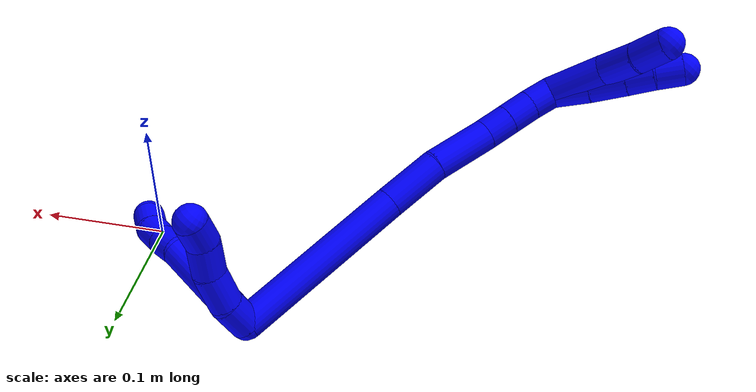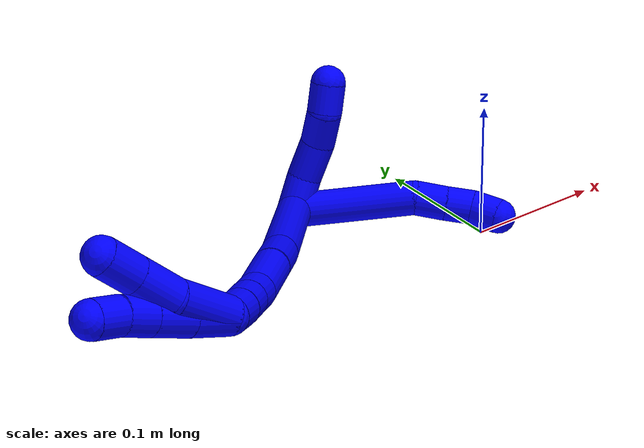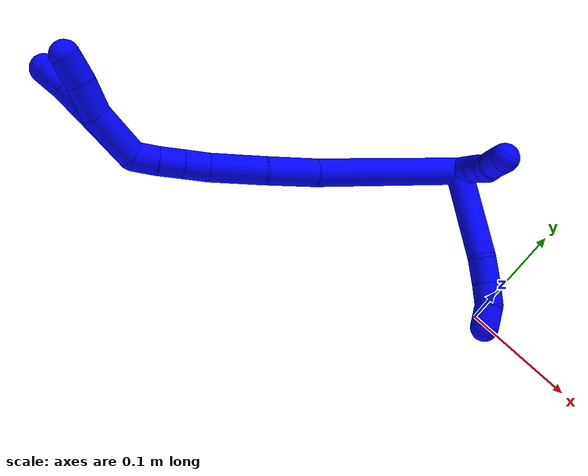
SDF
<sdf version="1.7">
 <world name="default">
  <model name="1">
   <static>0</static>
   <link name="1">
    <collision name="collision-cylinder-e_1_2_8">
     <pose>0.039429 -0.018064 -0.004624 1.82137 1.12906 1.36858</pose>
     <geometry><cylinder><radius>0.0125</radius><length>0.087232</length></cylinder></geometry>
     <surface>
      <friction><ode><mu>1.16</mu><mu2>1.16</mu2><slip1>0</slip1><slip2>0</slip2></ode></friction>
      <contact><ode><kp>1e+06</kp><kd>1</kd><max_vel>0</max_vel><min_depth>0.001</min_depth></ode></contact>
     </surface>
    </collision>
    <visual name="visual-cylinder-e_1_2_8">
     <pose>0.039429 -0.018064 -0.004624 1.82137 1.12906 1.36858</pose>
     <geometry><cylinder><radius>0.0125</radius><length>0.087232</length></cylinder></geometry>
     <material><ambient>0 0 1 1</ambient></material>
    </visual>
    <collision name="collision-cylinder-e_2_8_9">
     <pose>0.087233 -0.042908 -0.012698 2.04164 0.833307 1.25052</pose>
     <geometry><cylinder><radius>0.0125</radius><length>0.022628</length></cylinder></geometry>
     <surface>
      <friction><ode><mu>1.16</mu><mu2>1.16</mu2><slip1>0</slip1><slip2>0</slip2></ode></friction>
      <contact><ode><kp>1e+06</kp><kd>1</kd><max_vel>0</max_vel><min_depth>0.001</min_depth></ode></contact>
     </surface>
    </collision>
    <visual name="visual-cylinder-e_2_8_9">
     <pose>0.087233 -0.042908 -0.012698 2.04164 0.833307 1.25052</pose>
     <geometry><cylinder><radius>0.0125</radius><length>0.022628</length></cylinder></geometry>
     <material><ambient>0 0 1 1</ambient></material>
    </visual>
    <collision name="collision-cylinder-e_3_9_10">
     <pose>0.103307 -0.0557 -0.018335 1.91939 0.87759 1.18049</pose>
     <geometry><cylinder><radius>0.0125</radius><length>0.020021</length></cylinder></geometry>
     <surface>
      <friction><ode><mu>1.16</mu><mu2>1.16</mu2><slip1>0</slip1><slip2>0</slip2></ode></friction>
      <contact><ode><kp>1e+06</kp><kd>1</kd><max_vel>0</max_vel><min_depth>0.001</min_depth></ode></contact>
     </surface>
    </collision>
    <visual name="visual-cylinder-e_3_9_10">
     <pose>0.103307 -0.0557 -0.018335 1.91939 0.87759 1.18049</pose>
     <geometry><cylinder><radius>0.0125</radius><length>0.020021</length></cylinder></geometry>
     <material><ambient>0 0 1 1</ambient></material>
    </visual>
    <collision name="collision-cylinder-e_4_10_6">
     <pose>0.117269 -0.069582 -0.020314 1.5447 0.67191 0.65583</pose>
     <geometry><cylinder><radius>0.0125</radius><length>0.020119</length></cylinder></geometry>
     <surface>
      <friction><ode><mu>1.16</mu><mu2>1.16</mu2><slip1>0</slip1><slip2>0</slip2></ode></friction>
      <contact><ode><kp>1e+06</kp><kd>1</kd><max_vel>0</max_vel><min_depth>0.001</min_depth></ode></contact>
     </surface>
    </collision>
    <visual name="visual-cylinder-e_4_10_6">
     <pose>0.117269 -0.069582 -0.020314 1.5447 0.67191 0.65583</pose>
     <geometry><cylinder><radius>0.0125</radius><length>0.020119</length></cylinder></geometry>
     <material><ambient>0 0 1 1</ambient></material>
    </visual>
    <collision name="collision-cylinder-e_1_2_11">
     <pose>0.009411 0.00786 0.003095 -1.19567 0.839293 -0.589899</pose>
     <geometry><cylinder><radius>0.0125</radius><length>0.025292</length></cylinder></geometry>
     <surface>
      <friction><ode><mu>1.16</mu><mu2>1.16</mu2><slip1>0</slip1><slip2>0</slip2></ode></friction>
      <contact><ode><kp>1e+06</kp><kd>1</kd><max_vel>0</max_vel><min_depth>0.001</min_depth></ode></contact>
     </surface>
    </collision>
    <visual name="visual-cylinder-e_1_2_11">
     <pose>0.009411 0.00786 0.003095 -1.19567 0.839293 -0.589899</pose>
     <geometry><cylinder><radius>0.0125</radius><length>0.025292</length></cylinder></geometry>
     <material><ambient>0 0 1 1</ambient></material>
    </visual>
    <collision name="collision-cylinder-e_2_11_12">
     <pose>0.029659 0.022087 0.012674 -0.776329 0.872968 -0.376979</pose>
     <geometry><cylinder><radius>0.0125</radius><length>0.028286</length></cylinder></geometry>
     <surface>
      <friction><ode><mu>1.16</mu><mu2>1.16</mu2><slip1>0</slip1><slip2>0</slip2></ode></friction>
      <contact><ode><kp>1e+06</kp><kd>1</kd><max_vel>0</max_vel><min_depth>0.001</min_depth></ode></contact>
     </surface>
    </collision>
    <visual name="visual-cylinder-e_2_11_12">
     <pose>0.029659 0.022087 0.012674 -0.776329 0.872968 -0.376979</pose>
     <geometry><cylinder><radius>0.0125</radius><length>0.028286</length></cylinder></geometry>
     <material><ambient>0 0 1 1</ambient></material>
    </visual>
    <collision name="collision-cylinder-e_3_12_13">
     <pose>0.048261 0.033853 0.027501 -0.574313 0.663346 -0.202715</pose>
     <geometry><cylinder><radius>0.0125</radius><length>0.025225</length></cylinder></geometry>
     <surface>
      <friction><ode><mu>1.16</mu><mu2>1.16</mu2><slip1>0</slip1><slip2>0</slip2></ode></friction>
      <contact><ode><kp>1e+06</kp><kd>1</kd><max_vel>0</max_vel><min_depth>0.001</min_depth></ode></contact>
     </surface>
    </collision>
    <visual name="visual-cylinder-e_3_12_13">
     <pose>0.048261 0.033853 0.027501 -0.574313 0.663346 -0.202715</pose>
     <geometry><cylinder><radius>0.0125</radius><length>0.025225</length></cylinder></geometry>
     <material><ambient>0 0 1 1</ambient></material>
    </visual>
    <collision name="collision-cylinder-e_4_13_5">
     <pose>0.062538 0.046163 0.040555 -0.972519 0.661446 -0.359059</pose>
     <geometry><cylinder><radius>0.0125</radius><length>0.021197</length></cylinder></geometry>
     <surface>
      <friction><ode><mu>1.16</mu><mu2>1.16</mu2><slip1>0</slip1><slip2>0</slip2></ode></friction>
      <contact><ode><kp>1e+06</kp><kd>1</kd><max_vel>0</max_vel><min_depth>0.001</min_depth></ode></contact>
     </surface>
    </collision>
    <visual name="visual-cylinder-e_4_13_5">
     <pose>0.062538 0.046163 0.040555 -0.972519 0.661446 -0.359059</pose>
     <geometry><cylinder><radius>0.0125</radius><length>0.021197</length></cylinder></geometry>
     <material><ambient>0 0 1 1</ambient></material>
    </visual>
    <collision name="collision-cylinder-e_1_2_14">
     <pose>-0.007918 -0.030936 0.062481 0.459736 -0.113083 -0.026489</pose>
     <geometry><cylinder><radius>0.0125</radius><length>0.140337</length></cylinder></geometry>
     <surface>
      <friction><ode><mu>1.16</mu><mu2>1.16</mu2><slip1>0</slip1><slip2>0</slip2></ode></friction>
      <contact><ode><kp>1e+06</kp><kd>1</kd><max_vel>0</max_vel><min_depth>0.001</min_depth></ode></contact>
     </surface>
    </collision>
    <visual name="visual-cylinder-e_1_2_14">
     <pose>-0.007918 -0.030936 0.062481 0.459736 -0.113083 -0.026489</pose>
     <geometry><cylinder><radius>0.0125</radius><length>0.140337</length></cylinder></geometry>
     <material><ambient>0 0 1 1</ambient></material>
    </visual>
    <collision name="collision-cylinder-e_2_14_15">
     <pose>-0.018863 -0.071076 0.146037 0.411786 -0.130894 -0.027375</pose>
     <geometry><cylinder><radius>0.0125</radius><length>0.046391</length></cylinder></geometry>
     <surface>
      <friction><ode><mu>1.16</mu><mu2>1.16</mu2><slip1>0</slip1><slip2>0</slip2></ode></friction>
      <contact><ode><kp>1e+06</kp><kd>1</kd><max_vel>0</max_vel><min_depth>0.001</min_depth></ode></contact>
     </surface>
    </collision>
    <visual name="visual-cylinder-e_2_14_15">
     <pose>-0.018863 -0.071076 0.146037 0.411786 -0.130894 -0.027375</pose>
     <geometry><cylinder><radius>0.0125</radius><length>0.046391</length></cylinder></geometry>
     <material><ambient>0 0 1 1</ambient></material>
    </visual>
    <collision name="collision-cylinder-e_3_15_16">
     <pose>-0.02804 -0.091279 0.188035 0.483958 -0.254475 -0.063129</pose>
     <geometry><cylinder><radius>0.0125</radius><length>0.04885</length></cylinder></geometry>
     <surface>
      <friction><ode><mu>1.16</mu><mu2>1.16</mu2><slip1>0</slip1><slip2>0</slip2></ode></friction>
      <contact><ode><kp>1e+06</kp><kd>1</kd><max_vel>0</max_vel><min_depth>0.001</min_depth></ode></contact>
     </surface>
    </collision>
    <visual name="visual-cylinder-e_3_15_16">
     <pose>-0.02804 -0.091279 0.188035 0.483958 -0.254475 -0.063129</pose>
     <geometry><cylinder><radius>0.0125</radius><length>0.04885</length></cylinder></geometry>
     <material><ambient>0 0 1 1</ambient></material>
    </visual>
    <collision name="collision-cylinder-e_4_16_17">
     <pose>-0.036702 -0.106202 0.218948 0.374365 -0.23012 -0.043771</pose>
     <geometry><cylinder><radius>0.0125</radius><length>0.022046</length></cylinder></geometry>
     <surface>
      <friction><ode><mu>1.16</mu><mu2>1.16</mu2><slip1>0</slip1><slip2>0</slip2></ode></friction>
      <contact><ode><kp>1e+06</kp><kd>1</kd><max_vel>0</max_vel><min_depth>0.001</min_depth></ode></contact>
     </surface>
    </collision>
    <visual name="visual-cylinder-e_4_16_17">
     <pose>-0.036702 -0.106202 0.218948 0.374365 -0.23012 -0.043771</pose>
     <geometry><cylinder><radius>0.0125</radius><length>0.022046</length></cylinder></geometry>
     <material><ambient>0 0 1 1</ambient></material>
    </visual>
    <collision name="collision-cylinder-e_5_17_18">
     <pose>-0.041681 -0.114055 0.238658 0.38404 -0.230857 -0.045075</pose>
     <geometry><cylinder><radius>0.0125</radius><length>0.021542</length></cylinder></geometry>
     <surface>
      <friction><ode><mu>1.16</mu><mu2>1.16</mu2><slip1>0</slip1><slip2>0</slip2></ode></friction>
      <contact><ode><kp>1e+06</kp><kd>1</kd><max_vel>0</max_vel><min_depth>0.001</min_depth></ode></contact>
     </surface>
    </collision>
    <visual name="visual-cylinder-e_5_17_18">
     <pose>-0.041681 -0.114055 0.238658 0.38404 -0.230857 -0.045075</pose>
     <geometry><cylinder><radius>0.0125</radius><length>0.021542</length></cylinder></geometry>
     <material><ambient>0 0 1 1</ambient></material>
    </visual>
    <collision name="collision-cylinder-e_6_18_1">
     <pose>-0.047073 -0.1213 0.257811 0.338115 -0.28487 -0.048945</pose>
     <geometry><cylinder><radius>0.0125</radius><length>0.020835</length></cylinder></geometry>
     <surface>
      <friction><ode><mu>1.16</mu><mu2>1.16</mu2><slip1>0</slip1><slip2>0</slip2></ode></friction>
      <contact><ode><kp>1e+06</kp><kd>1</kd><max_vel>0</max_vel><min_depth>0.001</min_depth></ode></contact>
     </surface>
    </collision>
    <visual name="visual-cylinder-e_6_18_1">
     <pose>-0.047073 -0.1213 0.257811 0.338115 -0.28487 -0.048945</pose>
     <geometry><cylinder><radius>0.0125</radius><length>0.020835</length></cylinder></geometry>
     <material><ambient>0 0 1 1</ambient></material>
    </visual>
    <collision name="collision-cylinder-e_1_1_19">
     <pose>-0.059582 -0.12189 0.278422 -0.23921 -0.694347 0.086913</pose>
     <geometry><cylinder><radius>0.0125</radius><length>0.029946</length></cylinder></geometry>
     <surface>
      <friction><ode><mu>1.16</mu><mu2>1.16</mu2><slip1>0</slip1><slip2>0</slip2></ode></friction>
      <contact><ode><kp>1e+06</kp><kd>1</kd><max_vel>0</max_vel><min_depth>0.001</min_depth></ode></contact>
     </surface>
    </collision>
    <visual name="visual-cylinder-e_1_1_19">
     <pose>-0.059582 -0.12189 0.278422 -0.23921 -0.694347 0.086913</pose>
     <geometry><cylinder><radius>0.0125</radius><length>0.029946</length></cylinder></geometry>
     <material><ambient>0 0 1 1</ambient></material>
    </visual>
    <collision name="collision-cylinder-e_2_19_20">
     <pose>-0.07757 -0.116336 0.30056 -0.252533 -0.638851 0.083923</pose>
     <geometry><cylinder><radius>0.0125</radius><length>0.028199</length></cylinder></geometry>
     <surface>
      <friction><ode><mu>1.16</mu><mu2>1.16</mu2><slip1>0</slip1><slip2>0</slip2></ode></friction>
      <contact><ode><kp>1e+06</kp><kd>1</kd><max_vel>0</max_vel><min_depth>0.001</min_depth></ode></contact>
     </surface>
    </collision>
    <visual name="visual-cylinder-e_2_19_20">
     <pose>-0.07757 -0.116336 0.30056 -0.252533 -0.638851 0.083923</pose>
     <geometry><cylinder><radius>0.0125</radius><length>0.028199</length></cylinder></geometry>
     <material><ambient>0 0 1 1</ambient></material>
    </visual>
    <collision name="collision-cylinder-e_3_20_21">
     <pose>-0.092181 -0.111378 0.319882 -0.249386 -0.623315 0.080716</pose>
     <geometry><cylinder><radius>0.0125</radius><length>0.021255</length></cylinder></geometry>
     <surface>
      <friction><ode><mu>1.16</mu><mu2>1.16</mu2><slip1>0</slip1><slip2>0</slip2></ode></friction>
      <contact><ode><kp>1e+06</kp><kd>1</kd><max_vel>0</max_vel><min_depth>0.001</min_depth></ode></contact>
     </surface>
    </collision>
    <visual name="visual-cylinder-e_3_20_21">
     <pose>-0.092181 -0.111378 0.319882 -0.249386 -0.623315 0.080716</pose>
     <geometry><cylinder><radius>0.0125</radius><length>0.021255</length></cylinder></geometry>
     <material><ambient>0 0 1 1</ambient></material>
    </visual>
    <collision name="collision-cylinder-e_4_21_4">
     <pose>-0.104919 -0.108522 0.336173 -0.091331 -0.687258 0.0327</pose>
     <geometry><cylinder><radius>0.0125</radius><length>0.0206</length></cylinder></geometry>
     <surface>
      <friction><ode><mu>1.16</mu><mu2>1.16</mu2><slip1>0</slip1><slip2>0</slip2></ode></friction>
      <contact><ode><kp>1e+06</kp><kd>1</kd><max_vel>0</max_vel><min_depth>0.001</min_depth></ode></contact>
     </surface>
    </collision>
    <visual name="visual-cylinder-e_4_21_4">
     <pose>-0.104919 -0.108522 0.336173 -0.091331 -0.687258 0.0327</pose>
     <geometry><cylinder><radius>0.0125</radius><length>0.0206</length></cylinder></geometry>
     <material><ambient>0 0 1 1</ambient></material>
    </visual>
    <collision name="collision-cylinder-e_1_1_22">
     <pose>-0.059348 -0.117236 0.286527 -0.365524 -0.425088 0.079729</pose>
     <geometry><cylinder><radius>0.0125</radius><length>0.04533</length></cylinder></geometry>
     <surface>
      <friction><ode><mu>1.16</mu><mu2>1.16</mu2><slip1>0</slip1><slip2>0</slip2></ode></friction>
      <contact><ode><kp>1e+06</kp><kd>1</kd><max_vel>0</max_vel><min_depth>0.001</min_depth></ode></contact>
     </surface>
    </collision>
    <visual name="visual-cylinder-e_1_1_22">
     <pose>-0.059348 -0.117236 0.286527 -0.365524 -0.425088 0.079729</pose>
     <geometry><cylinder><radius>0.0125</radius><length>0.04533</length></cylinder></geometry>
     <material><ambient>0 0 1 1</ambient></material>
    </visual>
    <collision name="collision-cylinder-e_2_22_23">
     <pose>-0.074155 -0.101312 0.316379 -0.679879 -0.381993 0.136554</pose>
     <geometry><cylinder><radius>0.0125</radius><length>0.02929</length></cylinder></geometry>
     <surface>
      <friction><ode><mu>1.16</mu><mu2>1.16</mu2><slip1>0</slip1><slip2>0</slip2></ode></friction>
      <contact><ode><kp>1e+06</kp><kd>1</kd><max_vel>0</max_vel><min_depth>0.001</min_depth></ode></contact>
     </surface>
    </collision>
    <visual name="visual-cylinder-e_2_22_23">
     <pose>-0.074155 -0.101312 0.316379 -0.679879 -0.381993 0.136554</pose>
     <geometry><cylinder><radius>0.0125</radius><length>0.02929</length></cylinder></geometry>
     <material><ambient>0 0 1 1</ambient></material>
    </visual>
    <collision name="collision-cylinder-e_3_23_3">
     <pose>-0.083937 -0.086214 0.336916 -0.581509 -0.347594 0.104976</pose>
     <geometry><cylinder><radius>0.0125</radius><length>0.025379</length></cylinder></geometry>
     <surface>
      <friction><ode><mu>1.16</mu><mu2>1.16</mu2><slip1>0</slip1><slip2>0</slip2></ode></friction>
      <contact><ode><kp>1e+06</kp><kd>1</kd><max_vel>0</max_vel><min_depth>0.001</min_depth></ode></contact>
     </surface>
    </collision>
    <visual name="visual-cylinder-e_3_23_3">
     <pose>-0.083937 -0.086214 0.336916 -0.581509 -0.347594 0.104976</pose>
     <geometry><cylinder><radius>0.0125</radius><length>0.025379</length></cylinder></geometry>
     <material><ambient>0 0 1 1</ambient></material>
    </visual>
    <collision name="collision-sphere-3">
     <pose>-0.088259 -0.079661 0.346886 0 -0 0</pose>
     <geometry><sphere><radius>0.0125</radius></sphere></geometry>
     <surface>
      <friction><ode><mu>1.16</mu><mu2>1.16</mu2><slip1>0</slip1><slip2>0</slip2></ode></friction>
      <contact><ode><kp>1e+06</kp><kd>1</kd><max_vel>0</max_vel><min_depth>0.001</min_depth></ode></contact>
     </surface>
    </collision>
    <visual name="visual-sphere-3">
     <pose>-0.088259 -0.079661 0.346886 0 -0 0</pose>
     <geometry><sphere><radius>0.0125</radius></sphere></geometry>
     <material><ambient>0 0 1 1</ambient></material>
    </visual>
    <collision name="collision-sphere-23">
     <pose>-0.079614 -0.092768 0.326947 0 -0 0</pose>
     <geometry><sphere><radius>0.0125</radius></sphere></geometry>
     <surface>
      <friction><ode><mu>1.16</mu><mu2>1.16</mu2><slip1>0</slip1><slip2>0</slip2></ode></friction>
      <contact><ode><kp>1e+06</kp><kd>1</kd><max_vel>0</max_vel><min_depth>0.001</min_depth></ode></contact>
     </surface>
    </collision>
    <visual name="visual-sphere-23">
     <pose>-0.079614 -0.092768 0.326947 0 -0 0</pose>
     <geometry><sphere><radius>0.0125</radius></sphere></geometry>
     <material><ambient>0 0 1 1</ambient></material>
    </visual>
    <collision name="collision-sphere-22">
     <pose>-0.068695 -0.109855 0.305811 0 -0 0</pose>
     <geometry><sphere><radius>0.0125</radius></sphere></geometry>
     <surface>
      <friction><ode><mu>1.16</mu><mu2>1.16</mu2><slip1>0</slip1><slip2>0</slip2></ode></friction>
      <contact><ode><kp>1e+06</kp><kd>1</kd><max_vel>0</max_vel><min_depth>0.001</min_depth></ode></contact>
     </surface>
    </collision>
    <visual name="visual-sphere-22">
     <pose>-0.068695 -0.109855 0.305811 0 -0 0</pose>
     <geometry><sphere><radius>0.0125</radius></sphere></geometry>
     <material><ambient>0 0 1 1</ambient></material>
    </visual>
    <collision name="collision-sphere-4">
     <pose>-0.111454 -0.107796 0.344101 0 -0 0</pose>
     <geometry><sphere><radius>0.0125</radius></sphere></geometry>
     <surface>
      <friction><ode><mu>1.16</mu><mu2>1.16</mu2><slip1>0</slip1><slip2>0</slip2></ode></friction>
      <contact><ode><kp>1e+06</kp><kd>1</kd><max_vel>0</max_vel><min_depth>0.001</min_depth></ode></contact>
     </surface>
    </collision>
    <visual name="visual-sphere-4">
     <pose>-0.111454 -0.107796 0.344101 0 -0 0</pose>
     <geometry><sphere><radius>0.0125</radius></sphere></geometry>
     <material><ambient>0 0 1 1</ambient></material>
    </visual>
    <collision name="collision-sphere-21">
     <pose>-0.098385 -0.109248 0.328244 0 -0 0</pose>
     <geometry><sphere><radius>0.0125</radius></sphere></geometry>
     <surface>
      <friction><ode><mu>1.16</mu><mu2>1.16</mu2><slip1>0</slip1><slip2>0</slip2></ode></friction>
      <contact><ode><kp>1e+06</kp><kd>1</kd><max_vel>0</max_vel><min_depth>0.001</min_depth></ode></contact>
     </surface>
    </collision>
    <visual name="visual-sphere-21">
     <pose>-0.098385 -0.109248 0.328244 0 -0 0</pose>
     <geometry><sphere><radius>0.0125</radius></sphere></geometry>
     <material><ambient>0 0 1 1</ambient></material>
    </visual>
    <collision name="collision-sphere-20">
     <pose>-0.085977 -0.113508 0.31152 0 -0 0</pose>
     <geometry><sphere><radius>0.0125</radius></sphere></geometry>
     <surface>
      <friction><ode><mu>1.16</mu><mu2>1.16</mu2><slip1>0</slip1><slip2>0</slip2></ode></friction>
      <contact><ode><kp>1e+06</kp><kd>1</kd><max_vel>0</max_vel><min_depth>0.001</min_depth></ode></contact>
     </surface>
    </collision>
    <visual name="visual-sphere-20">
     <pose>-0.085977 -0.113508 0.31152 0 -0 0</pose>
     <geometry><sphere><radius>0.0125</radius></sphere></geometry>
     <material><ambient>0 0 1 1</ambient></material>
    </visual>
    <collision name="collision-sphere-11">
     <pose>0.018822 0.01572 0.00619 0 -0 0</pose>
     <geometry><sphere><radius>0.0125</radius></sphere></geometry>
     <surface>
      <friction><ode><mu>1.16</mu><mu2>1.16</mu2><slip1>0</slip1><slip2>0</slip2></ode></friction>
      <contact><ode><kp>1e+06</kp><kd>1</kd><max_vel>0</max_vel><min_depth>0.001</min_depth></ode></contact>
     </surface>
    </collision>
    <visual name="visual-sphere-11">
     <pose>0.018822 0.01572 0.00619 0 -0 0</pose>
     <geometry><sphere><radius>0.0125</radius></sphere></geometry>
     <material><ambient>0 0 1 1</ambient></material>
    </visual>
    <collision name="collision-sphere-6">
     <pose>0.123531 -0.077452 -0.020109 0 -0 0</pose>
     <geometry><sphere><radius>0.0125</radius></sphere></geometry>
     <surface>
      <friction><ode><mu>1.16</mu><mu2>1.16</mu2><slip1>0</slip1><slip2>0</slip2></ode></friction>
      <contact><ode><kp>1e+06</kp><kd>1</kd><max_vel>0</max_vel><min_depth>0.001</min_depth></ode></contact>
     </surface>
    </collision>
    <visual name="visual-sphere-6">
     <pose>0.123531 -0.077452 -0.020109 0 -0 0</pose>
     <geometry><sphere><radius>0.0125</radius></sphere></geometry>
     <material><ambient>0 0 1 1</ambient></material>
    </visual>
    <collision name="collision-sphere-10">
     <pose>0.111007 -0.061712 -0.02052 0 -0 0</pose>
     <geometry><sphere><radius>0.0125</radius></sphere></geometry>
     <surface>
      <friction><ode><mu>1.16</mu><mu2>1.16</mu2><slip1>0</slip1><slip2>0</slip2></ode></friction>
      <contact><ode><kp>1e+06</kp><kd>1</kd><max_vel>0</max_vel><min_depth>0.001</min_depth></ode></contact>
     </surface>
    </collision>
    <visual name="visual-sphere-10">
     <pose>0.111007 -0.061712 -0.02052 0 -0 0</pose>
     <geometry><sphere><radius>0.0125</radius></sphere></geometry>
     <material><ambient>0 0 1 1</ambient></material>
    </visual>
    <collision name="collision-sphere-9">
     <pose>0.095607 -0.049688 -0.016149 0 -0 0</pose>
     <geometry><sphere><radius>0.0125</radius></sphere></geometry>
     <surface>
      <friction><ode><mu>1.16</mu><mu2>1.16</mu2><slip1>0</slip1><slip2>0</slip2></ode></friction>
      <contact><ode><kp>1e+06</kp><kd>1</kd><max_vel>0</max_vel><min_depth>0.001</min_depth></ode></contact>
     </surface>
    </collision>
    <visual name="visual-sphere-9">
     <pose>0.095607 -0.049688 -0.016149 0 -0 0</pose>
     <geometry><sphere><radius>0.0125</radius></sphere></geometry>
     <material><ambient>0 0 1 1</ambient></material>
    </visual>
    <collision name="collision-sphere-2">
     <geometry><sphere><radius>0.0125</radius></sphere></geometry>
     <surface>
      <friction><ode><mu>1.16</mu><mu2>1.16</mu2><slip1>0</slip1><slip2>0</slip2></ode></friction>
      <contact><ode><kp>1e+06</kp><kd>1</kd><max_vel>0</max_vel><min_depth>0.001</min_depth></ode></contact>
     </surface>
    </collision>
    <visual name="visual-sphere-2">
     <geometry><sphere><radius>0.0125</radius></sphere></geometry>
     <material><ambient>0 0 1 1</ambient></material>
    </visual>
    <collision name="collision-sphere-19">
     <pose>-0.069163 -0.119164 0.2896 0 -0 0</pose>
     <geometry><sphere><radius>0.0125</radius></sphere></geometry>
     <surface>
      <friction><ode><mu>1.16</mu><mu2>1.16</mu2><slip1>0</slip1><slip2>0</slip2></ode></friction>
      <contact><ode><kp>1e+06</kp><kd>1</kd><max_vel>0</max_vel><min_depth>0.001</min_depth></ode></contact>
     </surface>
    </collision>
    <visual name="visual-sphere-19">
     <pose>-0.069163 -0.119164 0.2896 0 -0 0</pose>
     <geometry><sphere><radius>0.0125</radius></sphere></geometry>
     <material><ambient>0 0 1 1</ambient></material>
    </visual>
    <collision name="collision-sphere-8">
     <pose>0.078859 -0.036128 -0.009247 0 -0 0</pose>
     <geometry><sphere><radius>0.0125</radius></sphere></geometry>
     <surface>
      <friction><ode><mu>1.16</mu><mu2>1.16</mu2><slip1>0</slip1><slip2>0</slip2></ode></friction>
      <contact><ode><kp>1e+06</kp><kd>1</kd><max_vel>0</max_vel><min_depth>0.001</min_depth></ode></contact>
     </surface>
    </collision>
    <visual name="visual-sphere-8">
     <pose>0.078859 -0.036128 -0.009247 0 -0 0</pose>
     <geometry><sphere><radius>0.0125</radius></sphere></geometry>
     <material><ambient>0 0 1 1</ambient></material>
    </visual>
    <collision name="collision-sphere-12">
     <pose>0.040495 0.028455 0.019158 0 -0 0</pose>
     <geometry><sphere><radius>0.0125</radius></sphere></geometry>
     <surface>
      <friction><ode><mu>1.16</mu><mu2>1.16</mu2><slip1>0</slip1><slip2>0</slip2></ode></friction>
      <contact><ode><kp>1e+06</kp><kd>1</kd><max_vel>0</max_vel><min_depth>0.001</min_depth></ode></contact>
     </surface>
    </collision>
    <visual name="visual-sphere-12">
     <pose>0.040495 0.028455 0.019158 0 -0 0</pose>
     <geometry><sphere><radius>0.0125</radius></sphere></geometry>
     <material><ambient>0 0 1 1</ambient></material>
    </visual>
    <collision name="collision-sphere-13">
     <pose>0.056028 0.039252 0.035845 0 -0 0</pose>
     <geometry><sphere><radius>0.0125</radius></sphere></geometry>
     <surface>
      <friction><ode><mu>1.16</mu><mu2>1.16</mu2><slip1>0</slip1><slip2>0</slip2></ode></friction>
      <contact><ode><kp>1e+06</kp><kd>1</kd><max_vel>0</max_vel><min_depth>0.001</min_depth></ode></contact>
     </surface>
    </collision>
    <visual name="visual-sphere-13">
     <pose>0.056028 0.039252 0.035845 0 -0 0</pose>
     <geometry><sphere><radius>0.0125</radius></sphere></geometry>
     <material><ambient>0 0 1 1</ambient></material>
    </visual>
    <collision name="collision-sphere-5">
     <pose>0.069048 0.053074 0.045266 0 -0 0</pose>
     <geometry><sphere><radius>0.0125</radius></sphere></geometry>
     <surface>
      <friction><ode><mu>1.16</mu><mu2>1.16</mu2><slip1>0</slip1><slip2>0</slip2></ode></friction>
      <contact><ode><kp>1e+06</kp><kd>1</kd><max_vel>0</max_vel><min_depth>0.001</min_depth></ode></contact>
     </surface>
    </collision>
    <visual name="visual-sphere-5">
     <pose>0.069048 0.053074 0.045266 0 -0 0</pose>
     <geometry><sphere><radius>0.0125</radius></sphere></geometry>
     <material><ambient>0 0 1 1</ambient></material>
    </visual>
    <collision name="collision-sphere-14">
     <pose>-0.015836 -0.061871 0.124962 0 -0 0</pose>
     <geometry><sphere><radius>0.0125</radius></sphere></geometry>
     <surface>
      <friction><ode><mu>1.16</mu><mu2>1.16</mu2><slip1>0</slip1><slip2>0</slip2></ode></friction>
      <contact><ode><kp>1e+06</kp><kd>1</kd><max_vel>0</max_vel><min_depth>0.001</min_depth></ode></contact>
     </surface>
    </collision>
    <visual name="visual-sphere-14">
     <pose>-0.015836 -0.061871 0.124962 0 -0 0</pose>
     <geometry><sphere><radius>0.0125</radius></sphere></geometry>
     <material><ambient>0 0 1 1</ambient></material>
    </visual>
    <collision name="collision-sphere-15">
     <pose>-0.021891 -0.08028 0.167111 0 -0 0</pose>
     <geometry><sphere><radius>0.0125</radius></sphere></geometry>
     <surface>
      <friction><ode><mu>1.16</mu><mu2>1.16</mu2><slip1>0</slip1><slip2>0</slip2></ode></friction>
      <contact><ode><kp>1e+06</kp><kd>1</kd><max_vel>0</max_vel><min_depth>0.001</min_depth></ode></contact>
     </surface>
    </collision>
    <visual name="visual-sphere-15">
     <pose>-0.021891 -0.08028 0.167111 0 -0 0</pose>
     <geometry><sphere><radius>0.0125</radius></sphere></geometry>
     <material><ambient>0 0 1 1</ambient></material>
    </visual>
    <collision name="collision-sphere-16">
     <pose>-0.034188 -0.102277 0.208959 0 -0 0</pose>
     <geometry><sphere><radius>0.0125</radius></sphere></geometry>
     <surface>
      <friction><ode><mu>1.16</mu><mu2>1.16</mu2><slip1>0</slip1><slip2>0</slip2></ode></friction>
      <contact><ode><kp>1e+06</kp><kd>1</kd><max_vel>0</max_vel><min_depth>0.001</min_depth></ode></contact>
     </surface>
    </collision>
    <visual name="visual-sphere-16">
     <pose>-0.034188 -0.102277 0.208959 0 -0 0</pose>
     <geometry><sphere><radius>0.0125</radius></sphere></geometry>
     <material><ambient>0 0 1 1</ambient></material>
    </visual>
    <collision name="collision-sphere-17">
     <pose>-0.039217 -0.110127 0.228937 0 -0 0</pose>
     <geometry><sphere><radius>0.0125</radius></sphere></geometry>
     <surface>
      <friction><ode><mu>1.16</mu><mu2>1.16</mu2><slip1>0</slip1><slip2>0</slip2></ode></friction>
      <contact><ode><kp>1e+06</kp><kd>1</kd><max_vel>0</max_vel><min_depth>0.001</min_depth></ode></contact>
     </surface>
    </collision>
    <visual name="visual-sphere-17">
     <pose>-0.039217 -0.110127 0.228937 0 -0 0</pose>
     <geometry><sphere><radius>0.0125</radius></sphere></geometry>
     <material><ambient>0 0 1 1</ambient></material>
    </visual>
    <collision name="collision-sphere-18">
     <pose>-0.044146 -0.117984 0.24838 0 -0 0</pose>
     <geometry><sphere><radius>0.0125</radius></sphere></geometry>
     <surface>
      <friction><ode><mu>1.16</mu><mu2>1.16</mu2><slip1>0</slip1><slip2>0</slip2></ode></friction>
      <contact><ode><kp>1e+06</kp><kd>1</kd><max_vel>0</max_vel><min_depth>0.001</min_depth></ode></contact>
     </surface>
    </collision>
    <visual name="visual-sphere-18">
     <pose>-0.044146 -0.117984 0.24838 0 -0 0</pose>
     <geometry><sphere><radius>0.0125</radius></sphere></geometry>
     <material><ambient>0 0 1 1</ambient></material>
    </visual>
    <collision name="collision-sphere-1">
     <pose>-0.050001 -0.124616 0.267243 0 -0 0</pose>
     <geometry><sphere><radius>0.0125</radius></sphere></geometry>
     <surface>
      <friction><ode><mu>1.16</mu><mu2>1.16</mu2><slip1>0</slip1><slip2>0</slip2></ode></friction>
      <contact><ode><kp>1e+06</kp><kd>1</kd><max_vel>0</max_vel><min_depth>0.001</min_depth></ode></contact>
     </surface>
    </collision>
    <visual name="visual-sphere-1">
     <pose>-0.050001 -0.124616 0.267243 0 -0 0</pose>
     <geometry><sphere><radius>0.0125</radius></sphere></geometry>
     <material><ambient>0 0 1 1</ambient></material>
    </visual>
    <inertial>
     <pose>-0.010224 -0.058443 0.135914 0 -0 0</pose>
     <mass>0.75</mass>
     <inertia>
      <ixx>0.000317</ixx>
      <ixy>0</ixy>
      <ixz>0</ixz>
      <iyy>0.000329</iyy>
      <iyz>0</iyz>
      <izz>0.000146</izz>
     </inertia>
    </inertial>
   </link>
   <pose>-0.099307 0.091354 0.011254 0.684861 -0.481245 -0.382686</pose>
  </model>
 </world>
</sdf>
